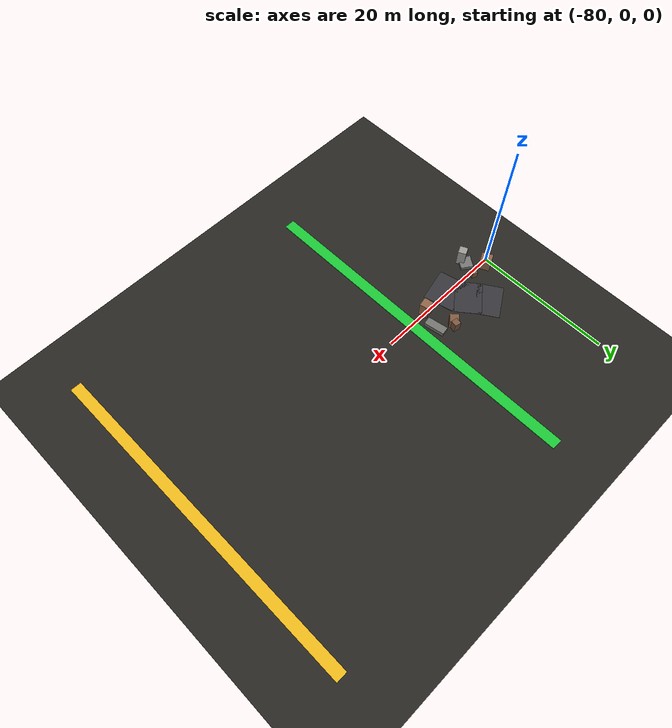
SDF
<sdf version="1.6">
 <world name="navitas_arena">
  <model name="ground_plane">
   <static>true</static>
   <link name="link">
    <collision name="collision">
     <geometry><plane><normal>0 0 1</normal><size>400 400</size></plane></geometry>
     <surface><friction><ode><mu>0.750</mu><mu2>0.750</mu2></ode></friction></surface>
    </collision>
    <visual name="visual">
     <cast_shadows>false</cast_shadows>
     <geometry><plane><normal>0 0 1</normal><size>400 400</size></plane></geometry>
     <material><ambient>0.150 0.140 0.130 1</ambient><diffuse>0.150 0.140 0.130 1</diffuse></material>
    </visual>
   </link>
  </model>
  <model name="brd_kolay_E">
   <static>true</static>
   <pose>-64.200 0.000 0.040 0 0 0.000</pose>
   <link name="link">
    <collision name="col"><geometry><box><size>1.600 50.000 0.080</size></box></geometry></collision>
    <visual name="vis">
     <geometry><box><size>1.600 50.000 0.080</size></box></geometry>
     <material><ambient>0.10 0.75 0.20 1</ambient><diffuse>0.10 0.75 0.20 1</diffuse></material>
    </visual>
   </link>
  </model>
  <model name="road_kolay_3_11">
   <static>true</static>
   <pose>-71.781 -0.417 0.040 0 0 1.804</pose>
   <link name="link">
    <collision name="col"><geometry><box><size>4.497 5.100 0.020</size></box></geometry></collision>
    <visual name="vis">
     <geometry><box><size>4.497 5.100 0.020</size></box></geometry>
     <material><ambient>0.20 0.20 0.22 1</ambient><diffuse>0.20 0.20 0.22 1</diffuse></material>
    </visual>
   </link>
  </model>
  <model name="road_kolay_3_12">
   <static>true</static>
   <pose>-73.136 2.500 0.040 0 0 2.249</pose>
   <link name="link">
    <collision name="col"><geometry><box><size>3.896 5.100 0.020</size></box></geometry></collision>
    <visual name="vis">
     <geometry><box><size>3.896 5.100 0.020</size></box></geometry>
     <material><ambient>0.20 0.20 0.22 1</ambient><diffuse>0.20 0.20 0.22 1</diffuse></material>
    </visual>
   </link>
  </model>
  <model name="road_kolay_3_13">
   <static>true</static>
   <pose>-74.816 4.833 0.040 0 0 2.136</pose>
   <link name="link">
    <collision name="col"><geometry><box><size>3.663 5.100 0.020</size></box></geometry></collision>
    <visual name="vis">
     <geometry><box><size>3.663 5.100 0.020</size></box></geometry>
     <material><ambient>0.20 0.20 0.22 1</ambient><diffuse>0.20 0.20 0.22 1</diffuse></material>
    </visual>
   </link>
  </model>
  <model name="deb_kolay_26">
   <static>true</static>
   <pose>-68.038 4.408 0.749 0 0 1.352</pose>
   <link name="link">
    <collision name="col"><geometry><box><size>0.934 0.934 1.497</size></box></geometry></collision>
    <visual name="vis">
     <geometry><box><size>0.934 0.934 1.497</size></box></geometry>
     <material><ambient>0.47 0.33 0.24 1</ambient><diffuse>0.47 0.33 0.24 1</diffuse></material>
    </visual>
   </link>
  </model>
  <model name="deb_kolay_54">
   <static>true</static>
   <pose>-66.985 -0.149 1.134 0 0 1.764</pose>
   <link name="link">
    <collision name="col"><geometry><box><size>1.357 1.357 2.268</size></box></geometry></collision>
    <visual name="vis">
     <geometry><box><size>1.357 1.357 2.268</size></box></geometry>
     <material><ambient>0.54 0.38 0.27 1</ambient><diffuse>0.54 0.38 0.27 1</diffuse></material>
    </visual>
   </link>
  </model>
  <model name="deb_kolay_93">
   <static>true</static>
   <pose>-79.075 0.507 0.871 0 0 2.036</pose>
   <link name="link">
    <collision name="col"><geometry><box><size>1.588 1.588 1.742</size></box></geometry></collision>
    <visual name="vis">
     <geometry><box><size>1.588 1.588 1.742</size></box></geometry>
     <material><ambient>0.52 0.36 0.26 1</ambient><diffuse>0.52 0.36 0.26 1</diffuse></material>
    </visual>
   </link>
  </model>
  <model name="deb_kolay_98">
   <static>true</static>
   <pose>-77.275 -1.646 0.232 0 0 0.962</pose>
   <link name="link">
    <collision name="col"><geometry><box><size>1.878 1.817 0.463</size></box></geometry></collision>
    <visual name="vis">
     <geometry><box><size>1.878 1.817 0.463</size></box></geometry>
     <material><ambient>0.44 0.44 0.43 1</ambient><diffuse>0.44 0.44 0.43 1</diffuse></material>
    </visual>
   </link>
  </model>
  <model name="deb_kolay_101">
   <static>true</static>
   <pose>-66.173 2.561 0.313 0 0 1.741</pose>
   <link name="link">
    <collision name="col"><geometry><box><size>3.005 1.191 0.627</size></box></geometry></collision>
    <visual name="vis">
     <geometry><box><size>3.005 1.191 0.627</size></box></geometry>
     <material><ambient>0.43 0.43 0.42 1</ambient><diffuse>0.43 0.43 0.42 1</diffuse></material>
    </visual>
   </link>
  </model>
  <model name="deb_kolay_133">
   <static>true</static>
   <pose>-76.542 0.470 0.469 0 0 1.191</pose>
   <link name="link">
    <collision name="col"><geometry><box><size>0.789 0.789 0.938</size></box></geometry></collision>
    <visual name="vis">
     <geometry><box><size>0.789 0.789 0.938</size></box></geometry>
     <material><ambient>0.48 0.34 0.24 1</ambient><diffuse>0.48 0.34 0.24 1</diffuse></material>
    </visual>
   </link>
  </model>
  <model name="deb_kolay_146">
   <static>true</static>
   <pose>-68.406 3.797 0.734 0 0 2.276</pose>
   <link name="link">
    <collision name="col"><geometry><box><size>1.284 1.284 1.469</size></box></geometry></collision>
    <visual name="vis">
     <geometry><box><size>1.284 1.284 1.469</size></box></geometry>
     <material><ambient>0.48 0.34 0.24 1</ambient><diffuse>0.48 0.34 0.24 1</diffuse></material>
    </visual>
   </link>
  </model>
  <model name="deb_kolay_164">
   <static>true</static>
   <pose>-77.202 -2.446 1.245 0 0 2.018</pose>
   <link name="link">
    <collision name="col"><geometry><box><size>1.167 1.167 2.489</size></box></geometry></collision>
    <visual name="vis">
     <geometry><box><size>1.167 1.167 2.489</size></box></geometry>
     <material><ambient>0.58 0.58 0.57 1</ambient><diffuse>0.58 0.58 0.57 1</diffuse></material>
    </visual>
   </link>
  </model>
  <model name="brd_orta_W">
   <static>true</static>
   <pose>-25.800 0.000 0.040 0 0 0.000</pose>
   <link name="link">
    <collision name="col"><geometry><box><size>1.600 50.000 0.080</size></box></geometry></collision>
    <visual name="vis">
     <geometry><box><size>1.600 50.000 0.080</size></box></geometry>
     <material><ambient>0.90 0.70 0.10 1</ambient><diffuse>0.90 0.70 0.10 1</diffuse></material>
    </visual>
   </link>
  </model>
 </world>
</sdf>
